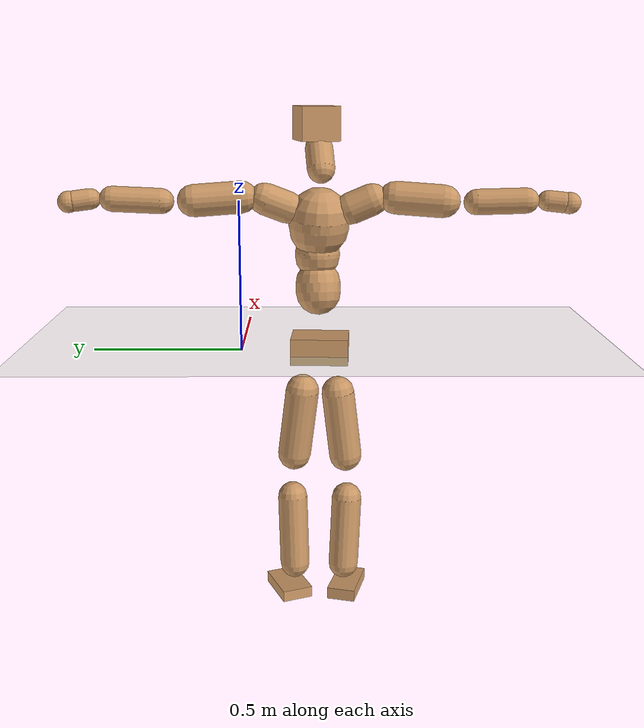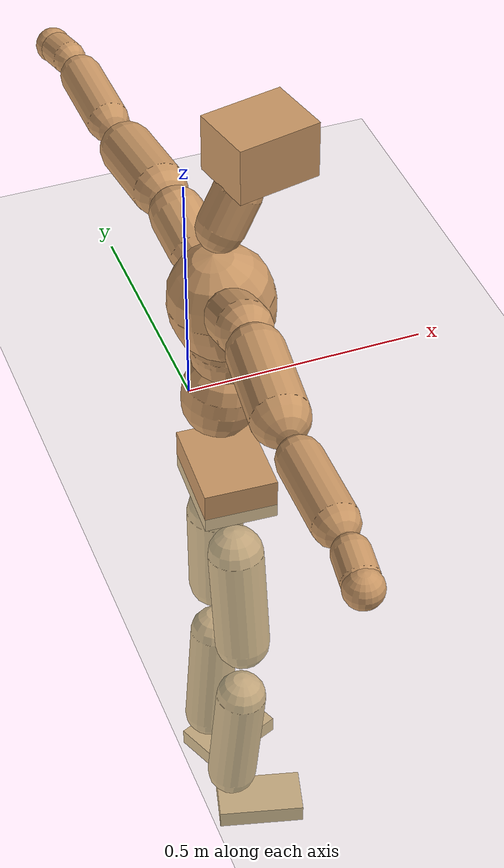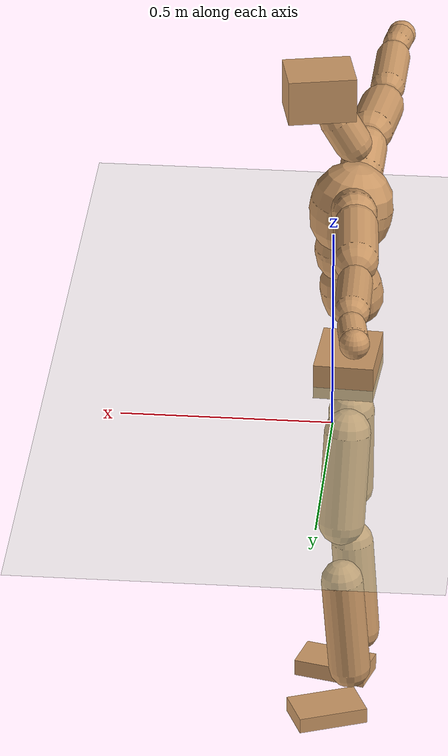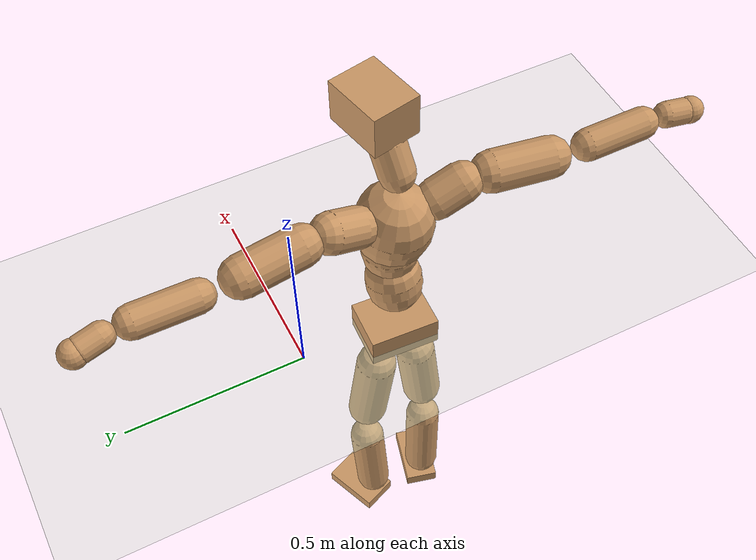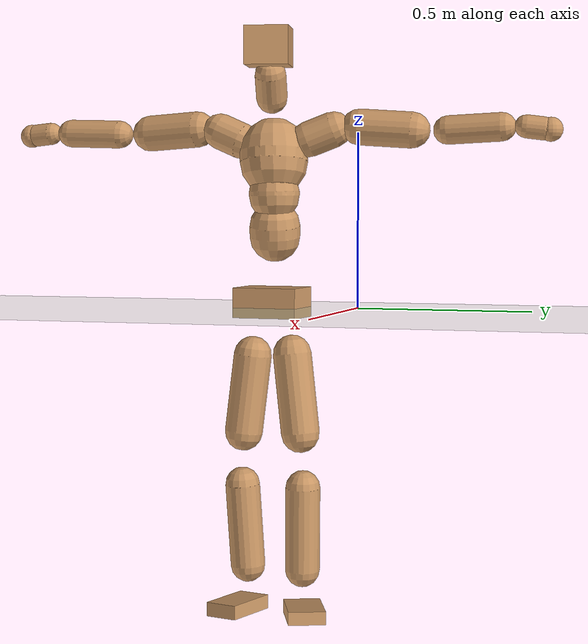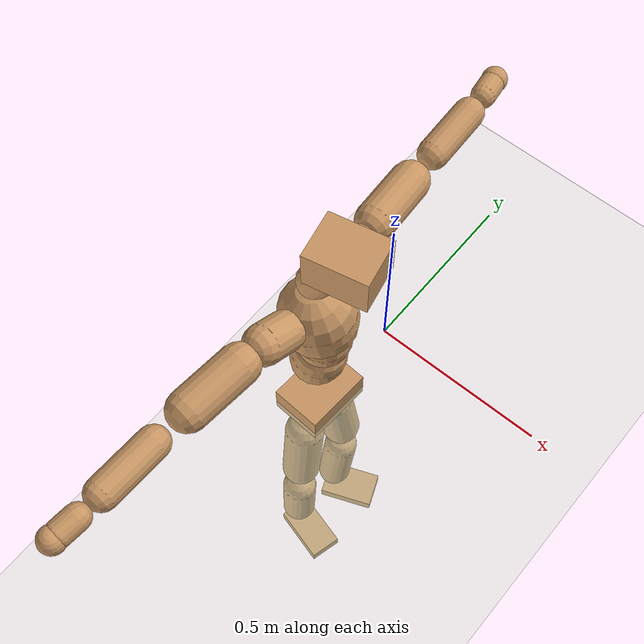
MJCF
<mujoco model="humanoid">
  <compiler coordinate="local" angle="radian"/>
  <default>
    <joint damping="0.0" armature="0.01" stiffness="0.0" limited="true"/>
    <geom conaffinity="1" condim="3" contype="7" margin="0.001" rgba="0.8 0.6 .4 1"/>
  </default>
  <asset>
    <texture type="skybox" builtin="gradient" rgb1=".4 .5 .6" rgb2="0 0 0" width="100" height="100"/>
    <texture builtin="flat" height="1278" mark="cross" markrgb="1 1 1" name="texgeom" random="0.01" rgb1="0.8 0.6 0.4" rgb2="0.8 0.6 0.4" type="cube" width="127"/>
    <texture builtin="checker" height="100" name="texplane" rgb1="0 0 0" rgb2="0.8 0.8 0.8" type="2d" width="100"/>
    <material name="MatPlane" reflectance="0.5" shininess="1" specular="1" texrepeat="60 60" texture="texplane"/>
    <material name="geom" texture="texgeom" texuniform="true"/>
  </asset>
  <worldbody>
    <light cutoff="100" diffuse="1 1 1" dir="-0 0 -1.3" directional="true" exponent="1" pos="0 0 1.3" specular=".1 .1 .1"/>
    <geom conaffinity="1" condim="3" name="floor" pos="0 0 0" rgba="0.8 0.9 0.8 1" size="100 100 .2" type="plane" material="MatPlane"/>
    <body name="Pelvis" pos="-0.0046 -0.2644 0.0198">
      <freejoint name="Pelvis"/>
      <geom type="box" contype="1" conaffinity="1" density="500" pos="-0.0117 0.0006 -0.0079" size="0.0717 0.0953 0.0436" quat="0.9996 0.0000 0.0000 -0.0268" name="Pelvis"/>
      <body name="L_Hip" pos="-0.0193 0.0513 -0.0812">
        <joint name="L_Hip_x" type="hinge" pos="0 0 0" axis="1 0 0" stiffness="800" damping="80" armature="0.02" range="-180.0000 180.0000"/>
        <joint name="L_Hip_y" type="hinge" pos="0 0 0" axis="0 1 0" stiffness="800" damping="80" armature="0.02" range="-180.0000 180.0000"/>
        <joint name="L_Hip_z" type="hinge" pos="0 0 0" axis="0 0 1" stiffness="800" damping="80" armature="0.02" range="-180.0000 180.0000"/>
        <geom type="capsule" contype="1" conaffinity="1" density="500" fromto="0.0036 0.0094 -0.0770 0.0143 0.0377 -0.3081" size="0.0563" name="L_Hip"/>
        <body name="L_Knee" pos="0.0179 0.0471 -0.3851">
          <joint name="L_Knee_x" type="hinge" pos="0 0 0" axis="1 0 0" stiffness="800" damping="80" armature="0.02" range="-180.0000 180.0000"/>
          <joint name="L_Knee_y" type="hinge" pos="0 0 0" axis="0 1 0" stiffness="800" damping="80" armature="0.02" range="-180.0000 180.0000"/>
          <joint name="L_Knee_z" type="hinge" pos="0 0 0" axis="0 0 1" stiffness="800" damping="80" armature="0.02" range="-180.0000 180.0000"/>
          <geom type="capsule" contype="1" conaffinity="1" density="500" fromto="-0.0065 -0.0024 -0.0824 -0.0259 -0.0095 -0.3295" size="0.0507" name="L_Knee"/>
          <body name="L_Ankle" pos="-0.0324 -0.0119 -0.4118">
            <joint name="L_Ankle_x" type="hinge" pos="0 0 0" axis="1 0 0" stiffness="800" damping="80" armature="0.02" range="-180.0000 180.0000"/>
            <joint name="L_Ankle_y" type="hinge" pos="0 0 0" axis="0 1 0" stiffness="800" damping="80" armature="0.02" range="-180.0000 180.0000"/>
            <joint name="L_Ankle_z" type="hinge" pos="0 0 0" axis="0 0 1" stiffness="800" damping="80" armature="0.02" range="-180.0000 180.0000"/>
            <geom type="box" contype="1" conaffinity="1" density="500" pos="0.0595 0.0241 -0.0303" size="0.0853 0.0542 0.0193" quat="0.9816 0.0000 0.0000 0.1911" name="L_Ankle"/>
            <body name="L_Toe" pos="0.1189 0.0481 -0.0606">
              <joint name="L_Toe_x" type="hinge" pos="0 0 0" axis="1 0 0" stiffness="500" damping="50" armature="0.02" range="-180.0000 180.0000"/>
              <joint name="L_Toe_y" type="hinge" pos="0 0 0" axis="0 1 0" stiffness="500" damping="50" armature="0.02" range="-180.0000 180.0000"/>
              <joint name="L_Toe_z" type="hinge" pos="0 0 0" axis="0 0 1" stiffness="500" damping="50" armature="0.02" range="-180.0000 180.0000"/>
              <geom type="box" contype="1" conaffinity="1" density="500" pos="0.0000 0.0000 0.0325" size="0.001 0.0026 0.0011" quat="0.9808 0.0000 0.0000 0.1952" name="L_Toe"/>
            </body>
          </body>
        </body>
      </body>
      <body name="R_Hip" pos="-0.0174 -0.0514 -0.0885">
        <joint name="R_Hip_x" type="hinge" pos="0 0 0" axis="1 0 0" stiffness="800" damping="80" armature="0.02" range="-180.0000 180.0000"/>
        <joint name="R_Hip_y" type="hinge" pos="0 0 0" axis="0 1 0" stiffness="800" damping="80" armature="0.02" range="-180.0000 180.0000"/>
        <joint name="R_Hip_z" type="hinge" pos="0 0 0" axis="0 0 1" stiffness="800" damping="80" armature="0.02" range="-180.0000 180.0000"/>
        <geom type="capsule" contype="1" conaffinity="1" density="500" fromto="0.0010 -0.0090 -0.0759 0.0040 -0.0362 -0.3034" size="0.0555" name="R_Hip"/>
        <body name="R_Knee" pos="0.0051 -0.0452 -0.3793">
          <joint name="R_Knee_x" type="hinge" pos="0 0 0" axis="1 0 0" stiffness="800" damping="80" armature="0.02" range="-180.0000 180.0000"/>
          <joint name="R_Knee_y" type="hinge" pos="0 0 0" axis="0 1 0" stiffness="800" damping="80" armature="0.02" range="-180.0000 180.0000"/>
          <joint name="R_Knee_z" type="hinge" pos="0 0 0" axis="0 0 1" stiffness="800" damping="80" armature="0.02" range="-180.0000 180.0000"/>
          <geom type="capsule" contype="1" conaffinity="1" density="500" fromto="-0.0060 0.0035 -0.0811 -0.0239 0.0139 -0.3243" size="0.0512" name="R_Knee"/>
          <body name="R_Ankle" pos="-0.0299 0.0174 -0.4054">
            <joint name="R_Ankle_x" type="hinge" pos="0 0 0" axis="1 0 0" stiffness="800" damping="80" armature="0.02" range="-180.0000 180.0000"/>
            <joint name="R_Ankle_y" type="hinge" pos="0 0 0" axis="0 1 0" stiffness="800" damping="80" armature="0.02" range="-180.0000 180.0000"/>
            <joint name="R_Ankle_z" type="hinge" pos="0 0 0" axis="0 0 1" stiffness="800" damping="80" armature="0.02" range="-180.0000 180.0000"/>
            <geom type="box" contype="1" conaffinity="1" density="500" pos="0.0637 -0.0168 -0.0310" size="0.0891 0.0485 0.0206" quat="0.9917 0.0000 0.0000 -0.1286" name="R_Ankle"/>
            <body name="R_Toe" pos="0.1275 -0.0336 -0.062">
              <joint name="R_Toe_x" type="hinge" pos="0 0 0" axis="1 0 0" stiffness="500" damping="50" armature="0.02" range="-180.0000 180.0000"/>
              <joint name="R_Toe_y" type="hinge" pos="0 0 0" axis="0 1 0" stiffness="500" damping="50" armature="0.02" range="-180.0000 180.0000"/>
              <joint name="R_Toe_z" type="hinge" pos="0 0 0" axis="0 0 1" stiffness="500" damping="50" armature="0.02" range="-180.0000 180.0000"/>
              <geom type="box" contype="1" conaffinity="1" density="500" pos="0.0000 0.0000 0.0323" size="0.001 0.0024 0.0011" quat="0.9928 0.0000 0.0000 -0.1195" name="R_Toe"/>
            </body>
          </body>
        </body>
      </body>
      <body name="Torso" pos="-0.0336 0.0039 0.122">
        <joint name="Torso_x" type="hinge" pos="0 0 0" axis="1 0 0" stiffness="1000" damping="100" armature="0.02" range="-180.0000 180.0000"/>
        <joint name="Torso_y" type="hinge" pos="0 0 0" axis="0 1 0" stiffness="1000" damping="100" armature="0.02" range="-180.0000 180.0000"/>
        <joint name="Torso_z" type="hinge" pos="0 0 0" axis="0 0 1" stiffness="1000" damping="100" armature="0.02" range="-180.0000 180.0000"/>
        <geom type="capsule" contype="1" conaffinity="1" density="500" fromto="0.0176 0.0038 0.0924 0.0118 0.0026 0.0616" size="0.0738" name="Torso"/>
        <body name="Spine" pos="0.0294 0.0064 0.154">
          <joint name="Spine_x" type="hinge" pos="0 0 0" axis="1 0 0" stiffness="1000" damping="100" armature="0.02" range="-180.0000 180.0000"/>
          <joint name="Spine_y" type="hinge" pos="0 0 0" axis="0 1 0" stiffness="1000" damping="100" armature="0.02" range="-180.0000 180.0000"/>
          <joint name="Spine_z" type="hinge" pos="0 0 0" axis="0 0 1" stiffness="1000" damping="100" armature="0.02" range="-180.0000 180.0000"/>
          <geom type="capsule" contype="1" conaffinity="1" density="500" fromto="0.0000 -0.0006 0.0376 0.0000 -0.0004 0.0251" size="0.0733" name="Spine"/>
          <body name="Chest" pos="0.0001 -0.001 0.0627">
            <joint name="Chest_x" type="hinge" pos="0 0 0" axis="1 0 0" stiffness="1000" damping="100" armature="0.02" range="-180.0000 180.0000"/>
            <joint name="Chest_y" type="hinge" pos="0 0 0" axis="0 1 0" stiffness="1000" damping="100" armature="0.02" range="-180.0000 180.0000"/>
            <joint name="Chest_z" type="hinge" pos="0 0 0" axis="0 0 1" stiffness="1000" damping="100" armature="0.02" range="-180.0000 180.0000"/>
            <geom type="capsule" contype="1" conaffinity="1" density="500" fromto="-0.0146 -0.0053 0.0902 -0.0098 -0.0036 0.0601" size="0.0987" name="Chest"/>
            <body name="Neck" pos="-0.0267 -0.0134 0.2235">
              <joint name="Neck_x" type="hinge" pos="0 0 0" axis="1 0 0" stiffness="500" damping="50" armature="0.02" range="-180.0000 180.0000"/>
              <joint name="Neck_y" type="hinge" pos="0 0 0" axis="0 1 0" stiffness="500" damping="50" armature="0.02" range="-180.0000 180.0000"/>
              <joint name="Neck_z" type="hinge" pos="0 0 0" axis="0 0 1" stiffness="500" damping="50" armature="0.02" range="-180.0000 180.0000"/>
              <geom type="capsule" contype="1" conaffinity="1" density="500" fromto="0.0119 0.0022 0.0216 0.0477 0.0089 0.0862" size="0.0452" name="Neck"/>
              <body name="Head" pos="0.0597 0.0111 0.1078">
                <joint name="Head_x" type="hinge" pos="0 0 0" axis="1 0 0" stiffness="500" damping="50" armature="0.02" range="-180.0000 180.0000"/>
                <joint name="Head_y" type="hinge" pos="0 0 0" axis="0 1 0" stiffness="500" damping="50" armature="0.02" range="-180.0000 180.0000"/>
                <joint name="Head_z" type="hinge" pos="0 0 0" axis="0 0 1" stiffness="500" damping="50" armature="0.02" range="-180.0000 180.0000"/>
                <geom type="box" contype="1" conaffinity="1" density="500" pos="0.0308 0.0065 0.0549" size="0.08 0.0629 0.0547" quat="0.9946 0.0000 0.0000 0.1042" name="Head"/>
              </body>
            </body>
            <body name="L_Thorax" pos="-0.0203 0.0713 0.1149">
              <joint name="L_Thorax_x" type="hinge" pos="0 0 0" axis="1 0 0" stiffness="500" damping="50" armature="0.02" range="-180.0000 180.0000"/>
              <joint name="L_Thorax_y" type="hinge" pos="0 0 0" axis="0 1 0" stiffness="500" damping="50" armature="0.02" range="-180.0000 180.0000"/>
              <joint name="L_Thorax_z" type="hinge" pos="0 0 0" axis="0 0 1" stiffness="500" damping="50" armature="0.02" range="-180.0000 180.0000"/>
              <geom type="capsule" contype="1" conaffinity="1" density="500" fromto="-0.0034 0.0245 0.0096 -0.0136 0.0978 0.0385" size="0.052" name="L_Thorax"/>
              <body name="L_Shoulder" pos="-0.017 0.1223 0.0482">
                <joint name="L_Shoulder_x" type="hinge" pos="0 0 0" axis="1 0 0" stiffness="500" damping="50" armature="0.02" range="-720.0000 720.0000"/>
                <joint name="L_Shoulder_y" type="hinge" pos="0 0 0" axis="0 1 0" stiffness="500" damping="50" armature="0.02" range="-720.0000 720.0000"/>
                <joint name="L_Shoulder_z" type="hinge" pos="0 0 0" axis="0 0 1" stiffness="500" damping="50" armature="0.02" range="-720.0000 720.0000"/>
                <geom type="capsule" contype="1" conaffinity="1" density="500" fromto="-0.0040 0.0506 -0.0033 -0.0161 0.2026 -0.0133" size="0.0524" name="L_Shoulder"/>
                <body name="L_Elbow" pos="-0.0202 0.2532 -0.0166">
                  <joint name="L_Elbow_x" type="hinge" pos="0 0 0" axis="1 0 0" stiffness="500" damping="50" armature="0.02" range="-720.0000 720.0000"/>
                  <joint name="L_Elbow_y" type="hinge" pos="0 0 0" axis="0 1 0" stiffness="500" damping="50" armature="0.02" range="-720.0000 720.0000"/>
                  <joint name="L_Elbow_z" type="hinge" pos="0 0 0" axis="0 0 1" stiffness="500" damping="50" armature="0.02" range="-720.0000 720.0000"/>
                  <geom type="capsule" contype="1" conaffinity="1" density="500" fromto="-0.0015 0.0515 0.0026 -0.0061 0.2060 0.0102" size="0.0411" name="L_Elbow"/>
                  <body name="L_Wrist" pos="-0.0076 0.2575 0.0128">
                    <joint name="L_Wrist_x" type="hinge" pos="0 0 0" axis="1 0 0" stiffness="300" damping="30" armature="0.02" range="-180.0000 180.0000"/>
                    <joint name="L_Wrist_y" type="hinge" pos="0 0 0" axis="0 1 0" stiffness="300" damping="30" armature="0.02" range="-180.0000 180.0000"/>
                    <joint name="L_Wrist_z" type="hinge" pos="0 0 0" axis="0 0 1" stiffness="300" damping="30" armature="0.02" range="-180.0000 180.0000"/>
                    <geom type="capsule" contype="1" conaffinity="1" density="500" fromto="-0.0030 0.0168 -0.0021 -0.0119 0.0674 -0.0084" size="0.0333" name="L_Wrist"/>
                    <body name="L_Hand" pos="-0.0149 0.0842 -0.0105">
                      <joint name="L_Hand_x" type="hinge" pos="0 0 0" axis="1 0 0" stiffness="300" damping="30" armature="0.02" range="-180.0000 180.0000"/>
                      <joint name="L_Hand_y" type="hinge" pos="0 0 0" axis="0 1 0" stiffness="300" damping="30" armature="0.02" range="-180.0000 180.0000"/>
                      <joint name="L_Hand_z" type="hinge" pos="0 0 0" axis="0 0 1" stiffness="300" damping="30" armature="0.02" range="-180.0000 180.0000"/>
                      <geom type="sphere" contype="1" conaffinity="1" density="500" size="0.0347" pos="0.0000 0.0000 0.0000" name="L_Hand"/>
                    </body>
                  </body>
                </body>
              </body>
            </body>
            <body name="R_Thorax" pos="-0.0262 -0.0846 0.1124">
              <joint name="R_Thorax_x" type="hinge" pos="0 0 0" axis="1 0 0" stiffness="500" damping="50" armature="0.02" range="-180.0000 180.0000"/>
              <joint name="R_Thorax_y" type="hinge" pos="0 0 0" axis="0 1 0" stiffness="500" damping="50" armature="0.02" range="-180.0000 180.0000"/>
              <joint name="R_Thorax_z" type="hinge" pos="0 0 0" axis="0 0 1" stiffness="500" damping="50" armature="0.02" range="-180.0000 180.0000"/>
              <geom type="capsule" contype="1" conaffinity="1" density="500" fromto="-0.0015 -0.0227 0.0097 -0.0060 -0.0907 0.0388" size="0.0521" name="R_Thorax"/>
              <body name="R_Shoulder" pos="-0.0075 -0.1134 0.0485">
                <joint name="R_Shoulder_x" type="hinge" pos="0 0 0" axis="1 0 0" stiffness="500" damping="50" armature="0.02" range="-720.0000 720.0000"/>
                <joint name="R_Shoulder_y" type="hinge" pos="0 0 0" axis="0 1 0" stiffness="500" damping="50" armature="0.02" range="-720.0000 720.0000"/>
                <joint name="R_Shoulder_z" type="hinge" pos="0 0 0" axis="0 0 1" stiffness="500" damping="50" armature="0.02" range="-720.0000 720.0000"/>
                <geom type="capsule" contype="1" conaffinity="1" density="500" fromto="-0.0053 -0.0512 -0.0033 -0.0213 -0.2050 -0.0132" size="0.0531" name="R_Shoulder"/>
                <body name="R_Elbow" pos="-0.0266 -0.2562 -0.0165">
                  <joint name="R_Elbow_x" type="hinge" pos="0 0 0" axis="1 0 0" stiffness="500" damping="50" armature="0.02" range="-720.0000 720.0000"/>
                  <joint name="R_Elbow_y" type="hinge" pos="0 0 0" axis="0 1 0" stiffness="500" damping="50" armature="0.02" range="-720.0000 720.0000"/>
                  <joint name="R_Elbow_z" type="hinge" pos="0 0 0" axis="0 0 1" stiffness="500" damping="50" armature="0.02" range="-720.0000 720.0000"/>
                  <geom type="capsule" contype="1" conaffinity="1" density="500" fromto="-0.0008 -0.0522 0.0016 -0.0032 -0.2090 0.0062" size="0.0413" name="R_Elbow"/>
                  <body name="R_Wrist" pos="-0.004 -0.2612 0.0078">
                    <joint name="R_Wrist_x" type="hinge" pos="0 0 0" axis="1 0 0" stiffness="300" damping="30" armature="0.02" range="-180.0000 180.0000"/>
                    <joint name="R_Wrist_y" type="hinge" pos="0 0 0" axis="0 1 0" stiffness="300" damping="30" armature="0.02" range="-180.0000 180.0000"/>
                    <joint name="R_Wrist_z" type="hinge" pos="0 0 0" axis="0 0 1" stiffness="300" damping="30" armature="0.02" range="-180.0000 180.0000"/>
                    <geom type="capsule" contype="1" conaffinity="1" density="500" fromto="-0.0020 -0.0171 -0.0016 -0.0079 -0.0683 -0.0065" size="0.0333" name="R_Wrist"/>
                    <body name="R_Hand" pos="-0.0099 -0.0854 -0.0082">
                      <joint name="R_Hand_x" type="hinge" pos="0 0 0" axis="1 0 0" stiffness="300" damping="30" armature="0.02" range="-180.0000 180.0000"/>
                      <joint name="R_Hand_y" type="hinge" pos="0 0 0" axis="0 1 0" stiffness="300" damping="30" armature="0.02" range="-180.0000 180.0000"/>
                      <joint name="R_Hand_z" type="hinge" pos="0 0 0" axis="0 0 1" stiffness="300" damping="30" armature="0.02" range="-180.0000 180.0000"/>
                      <geom type="sphere" contype="1" conaffinity="1" density="500" size="0.0347" pos="0.0000 0.0000 0.0000" name="R_Hand"/>
                    </body>
                  </body>
                </body>
              </body>
            </body>
          </body>
        </body>
      </body>
    </body>
  </worldbody>
  <actuator>
    <motor name="L_Hip_x" joint="L_Hip_x" gear="500"/>
    <motor name="L_Hip_y" joint="L_Hip_y" gear="500"/>
    <motor name="L_Hip_z" joint="L_Hip_z" gear="500"/>
    <motor name="L_Knee_x" joint="L_Knee_x" gear="500"/>
    <motor name="L_Knee_y" joint="L_Knee_y" gear="500"/>
    <motor name="L_Knee_z" joint="L_Knee_z" gear="500"/>
    <motor name="L_Ankle_x" joint="L_Ankle_x" gear="500"/>
    <motor name="L_Ankle_y" joint="L_Ankle_y" gear="500"/>
    <motor name="L_Ankle_z" joint="L_Ankle_z" gear="500"/>
    <motor name="L_Toe_x" joint="L_Toe_x" gear="500"/>
    <motor name="L_Toe_y" joint="L_Toe_y" gear="500"/>
    <motor name="L_Toe_z" joint="L_Toe_z" gear="500"/>
    <motor name="R_Hip_x" joint="R_Hip_x" gear="500"/>
    <motor name="R_Hip_y" joint="R_Hip_y" gear="500"/>
    <motor name="R_Hip_z" joint="R_Hip_z" gear="500"/>
    <motor name="R_Knee_x" joint="R_Knee_x" gear="500"/>
    <motor name="R_Knee_y" joint="R_Knee_y" gear="500"/>
    <motor name="R_Knee_z" joint="R_Knee_z" gear="500"/>
    <motor name="R_Ankle_x" joint="R_Ankle_x" gear="500"/>
    <motor name="R_Ankle_y" joint="R_Ankle_y" gear="500"/>
    <motor name="R_Ankle_z" joint="R_Ankle_z" gear="500"/>
    <motor name="R_Toe_x" joint="R_Toe_x" gear="500"/>
    <motor name="R_Toe_y" joint="R_Toe_y" gear="500"/>
    <motor name="R_Toe_z" joint="R_Toe_z" gear="500"/>
    <motor name="Torso_x" joint="Torso_x" gear="500"/>
    <motor name="Torso_y" joint="Torso_y" gear="500"/>
    <motor name="Torso_z" joint="Torso_z" gear="500"/>
    <motor name="Spine_x" joint="Spine_x" gear="500"/>
    <motor name="Spine_y" joint="Spine_y" gear="500"/>
    <motor name="Spine_z" joint="Spine_z" gear="500"/>
    <motor name="Chest_x" joint="Chest_x" gear="500"/>
    <motor name="Chest_y" joint="Chest_y" gear="500"/>
    <motor name="Chest_z" joint="Chest_z" gear="500"/>
    <motor name="Neck_x" joint="Neck_x" gear="500"/>
    <motor name="Neck_y" joint="Neck_y" gear="500"/>
    <motor name="Neck_z" joint="Neck_z" gear="500"/>
    <motor name="Head_x" joint="Head_x" gear="500"/>
    <motor name="Head_y" joint="Head_y" gear="500"/>
    <motor name="Head_z" joint="Head_z" gear="500"/>
    <motor name="L_Thorax_x" joint="L_Thorax_x" gear="500"/>
    <motor name="L_Thorax_y" joint="L_Thorax_y" gear="500"/>
    <motor name="L_Thorax_z" joint="L_Thorax_z" gear="500"/>
    <motor name="L_Shoulder_x" joint="L_Shoulder_x" gear="500"/>
    <motor name="L_Shoulder_y" joint="L_Shoulder_y" gear="500"/>
    <motor name="L_Shoulder_z" joint="L_Shoulder_z" gear="500"/>
    <motor name="L_Elbow_x" joint="L_Elbow_x" gear="500"/>
    <motor name="L_Elbow_y" joint="L_Elbow_y" gear="500"/>
    <motor name="L_Elbow_z" joint="L_Elbow_z" gear="500"/>
    <motor name="L_Wrist_x" joint="L_Wrist_x" gear="500"/>
    <motor name="L_Wrist_y" joint="L_Wrist_y" gear="500"/>
    <motor name="L_Wrist_z" joint="L_Wrist_z" gear="500"/>
    <motor name="L_Hand_x" joint="L_Hand_x" gear="500"/>
    <motor name="L_Hand_y" joint="L_Hand_y" gear="500"/>
    <motor name="L_Hand_z" joint="L_Hand_z" gear="500"/>
    <motor name="R_Thorax_x" joint="R_Thorax_x" gear="500"/>
    <motor name="R_Thorax_y" joint="R_Thorax_y" gear="500"/>
    <motor name="R_Thorax_z" joint="R_Thorax_z" gear="500"/>
    <motor name="R_Shoulder_x" joint="R_Shoulder_x" gear="500"/>
    <motor name="R_Shoulder_y" joint="R_Shoulder_y" gear="500"/>
    <motor name="R_Shoulder_z" joint="R_Shoulder_z" gear="500"/>
    <motor name="R_Elbow_x" joint="R_Elbow_x" gear="500"/>
    <motor name="R_Elbow_y" joint="R_Elbow_y" gear="500"/>
    <motor name="R_Elbow_z" joint="R_Elbow_z" gear="500"/>
    <motor name="R_Wrist_x" joint="R_Wrist_x" gear="500"/>
    <motor name="R_Wrist_y" joint="R_Wrist_y" gear="500"/>
    <motor name="R_Wrist_z" joint="R_Wrist_z" gear="500"/>
    <motor name="R_Hand_x" joint="R_Hand_x" gear="500"/>
    <motor name="R_Hand_y" joint="R_Hand_y" gear="500"/>
    <motor name="R_Hand_z" joint="R_Hand_z" gear="500"/>
  </actuator>
  <contact>
    <exclude body1="Torso" body2="Chest"/>
    <exclude body1="Head" body2="Chest"/>
    <exclude body1="R_Knee" body2="R_Toe"/>
    <exclude body1="R_Knee" body2="L_Ankle"/>
    <exclude body1="R_Knee" body2="L_Toe"/>
    <exclude body1="L_Knee" body2="L_Toe"/>
    <exclude body1="L_Knee" body2="R_Ankle"/>
    <exclude body1="L_Knee" body2="R_Toe"/>
    <exclude body1="L_Shoulder" body2="Chest"/>
    <exclude body1="R_Shoulder" body2="Chest"/>
  </contact>
  <sensor/>
  <size njmax="700" nconmax="700"/>
</mujoco>
